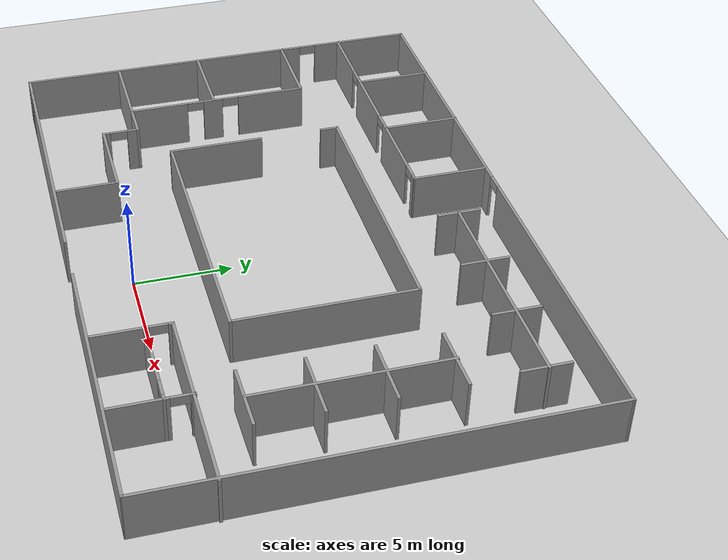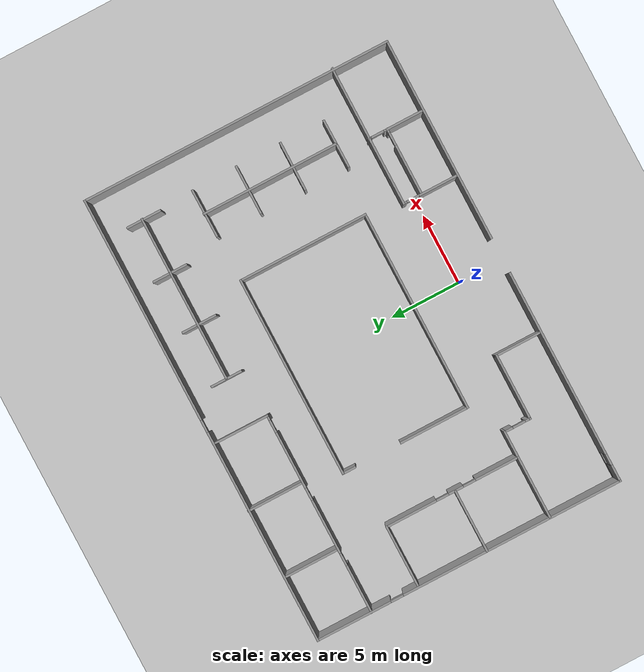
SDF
<sdf version="1.6">
 <world name="default">
  <light name="sun" type="directional">
   <pose>0 0 10 0 -0 0</pose>
   <diffuse>0.8 0.8 0.8 1</diffuse>
   <specular>0.2 0.2 0.2 1</specular>
   <attenuation>
    <range>1000</range>
    <constant>0.9</constant>
    <linear>0.01</linear>
    <quadratic>0.001</quadratic>
   </attenuation>
   <direction>-0.5 0.1 -0.9</direction>
  </light>
  <model name="ground_plane">
   <static>1</static>
   <link name="link">
    <collision name="collision">
     <geometry><plane><normal>0 0 1</normal><size>100 100</size></plane></geometry>
     <surface><friction><ode><mu>100</mu><mu2>50</mu2></ode></friction></surface>
    </collision>
    <visual name="visual">
     <cast_shadows>0</cast_shadows>
     <geometry><plane><normal>0 0 1</normal><size>100 100</size></plane></geometry>
     <material>
      <script><uri>file://media/materials/scripts/gazebo.material</uri><name>Gazebo/Grey</name></script>
     </material>
    </visual>
   </link>
  </model>
  <gravity>0 0 -9.8</gravity>
  <magnetic_field>6e-06 2.3e-05 -4.2e-05</magnetic_field>
  <atmosphere type="adiabatic"/>
  <physics name="default_physics" default="0" type="ode">
   <max_step_size>0.001</max_step_size>
   <real_time_factor>1</real_time_factor>
   <real_time_update_rate>1000</real_time_update_rate>
  </physics>
  <scene><ambient>0.4 0.4 0.4 1</ambient><background>0.7 0.7 0.7 1</background><shadows>1</shadows></scene>
  <spherical_coordinates>
   <surface_model>EARTH_WGS84</surface_model>
   <latitude_deg>0</latitude_deg>
   <longitude_deg>0</longitude_deg>
   <elevation>0</elevation>
   <heading_deg>0</heading_deg>
  </spherical_coordinates>
  <model name="Untitled12">
   <pose>-0.0795 8.01039 0 0 -0 0</pose>
   <link name="Wall_101">
    <collision name="Wall_101_Collision">
     <geometry><box><size>4.5 0.15 2.5</size></box></geometry>
     <pose>0 0 1.25 0 -0 0</pose>
    </collision>
    <visual name="Wall_101_Visual">
     <pose>0 0 1.25 0 -0 0</pose>
     <geometry><box><size>4.5 0.15 2.5</size></box></geometry>
     <material>
      <script><uri>file://media/materials/scripts/gazebo.material</uri><name>Gazebo/Grey</name></script>
      <ambient>1 1 1 1</ambient>
     </material>
     <meta><layer>0</layer></meta>
    </visual>
    <pose>-13.8522 -5.94015 0 0 -0 3.14159</pose>
   </link>
   <link name="Wall_103">
    <collision name="Wall_103_Collision">
     <geometry><box><size>4.5 0.15 2.5</size></box></geometry>
     <pose>0 0 1.25 0 -0 0</pose>
    </collision>
    <visual name="Wall_103_Visual">
     <pose>0 0 1.25 0 -0 0</pose>
     <geometry><box><size>4.5 0.15 2.5</size></box></geometry>
     <material>
      <script><uri>file://media/materials/scripts/gazebo.material</uri><name>Gazebo/Grey</name></script>
      <ambient>1 1 1 1</ambient>
     </material>
     <meta><layer>0</layer></meta>
    </visual>
    <pose>-13.8999 -1.33636 0 0 -0 3.14159</pose>
   </link>
   <link name="Wall_35">
    <pose>-0.004782 11.0154 0 0 -0 0</pose>
    <visual name="Wall_35_Visual_0">
     <pose>-8.49214 0 1.25 0 -0 0</pose>
     <geometry><box><size>15.2657 0.15 2.5</size></box></geometry>
     <material>
      <script><uri>file://media/materials/scripts/gazebo.material</uri><name>Gazebo/Grey</name></script>
      <ambient>1 1 1 1</ambient>
     </material>
     <meta><layer>0</layer></meta>
    </visual>
    <collision name="Wall_35_Collision_0">
     <geometry><box><size>15.2657 0.15 2.5</size></box></geometry>
     <pose>-8.49214 0 1.25 0 -0 0</pose>
    </collision>
    <visual name="Wall_35_Visual_1">
     <pose>8.08286 0 1.25 0 -0 0</pose>
     <geometry><box><size>16.0843 0.15 2.5</size></box></geometry>
     <material>
      <script><uri>file://media/materials/scripts/gazebo.material</uri><name>Gazebo/Grey</name></script>
      <ambient>1 1 1 1</ambient>
     </material>
     <meta><layer>0</layer></meta>
    </visual>
    <collision name="Wall_35_Collision_1">
     <geometry><box><size>16.0843 0.15 2.5</size></box></geometry>
     <pose>8.08286 0 1.25 0 -0 0</pose>
    </collision>
    <visual name="Wall_35_Visual_2">
     <pose>-0.409273 0 2.25 0 -0 0</pose>
     <geometry><box><size>0.9 0.15 0.5</size></box></geometry>
     <material>
      <script><uri>file://media/materials/scripts/gazebo.material</uri><name>Gazebo/Grey</name></script>
      <ambient>1 1 1 1</ambient>
     </material>
     <meta><layer>0</layer></meta>
    </visual>
    <collision name="Wall_35_Collision_2">
     <geometry><box><size>0.9 0.15 0.5</size></box></geometry>
     <pose>-0.409273 0 2.25 0 -0 0</pose>
    </collision>
   </link>
   <link name="Wall_36">
    <collision name="Wall_36_Collision">
     <geometry><box><size>22.2038 0.15 2.5</size></box></geometry>
     <pose>0 0 1.25 0 -0 0</pose>
    </collision>
    <visual name="Wall_36_Visual">
     <pose>0 0 1.25 0 -0 0</pose>
     <geometry><box><size>22.2038 0.15 2.5</size></box></geometry>
     <material>
      <script><uri>file://media/materials/scripts/gazebo.material</uri><name>Gazebo/Grey</name></script>
      <ambient>1 1 1 1</ambient>
     </material>
     <meta><layer>0</layer></meta>
    </visual>
    <pose>16.0221 -0.011487 0 0 0 -1.57289</pose>
   </link>
   <link name="Wall_38">
    <pose>-16.0779 -0.011487 0 0 -0 1.5687</pose>
    <visual name="Wall_38_Visual_0">
     <pose>-3.15406 0 1.25 0 -0 0</pose>
     <geometry><box><size>15.8957 0.15 2.5</size></box></geometry>
     <material>
      <script><uri>file://media/materials/scripts/gazebo.material</uri><name>Gazebo/Grey</name></script>
      <ambient>1 1 1 1</ambient>
     </material>
     <meta><layer>0</layer></meta>
    </visual>
    <collision name="Wall_38_Collision_0">
     <geometry><box><size>15.8957 0.15 2.5</size></box></geometry>
     <pose>-3.15406 0 1.25 0 -0 0</pose>
    </collision>
    <visual name="Wall_38_Visual_1">
     <pose>8.39784 0 1.25 0 -0 0</pose>
     <geometry><box><size>5.40811 0.15 2.5</size></box></geometry>
     <material>
      <script><uri>file://media/materials/scripts/gazebo.material</uri><name>Gazebo/Grey</name></script>
      <ambient>1 1 1 1</ambient>
     </material>
     <meta><layer>0</layer></meta>
    </visual>
    <collision name="Wall_38_Collision_1">
     <geometry><box><size>5.40811 0.15 2.5</size></box></geometry>
     <pose>8.39784 0 1.25 0 -0 0</pose>
    </collision>
    <visual name="Wall_38_Visual_2">
     <pose>5.24378 0 2.25 0 -0 0</pose>
     <geometry><box><size>0.9 0.15 0.5</size></box></geometry>
     <material>
      <script><uri>file://media/materials/scripts/gazebo.material</uri><name>Gazebo/Grey</name></script>
      <ambient>1 1 1 1</ambient>
     </material>
     <meta><layer>0</layer></meta>
    </visual>
    <collision name="Wall_38_Collision_2">
     <geometry><box><size>0.9 0.15 0.5</size></box></geometry>
     <pose>5.24378 0 2.25 0 -0 0</pose>
    </collision>
   </link>
   <link name="Wall_40">
    <pose>-8.89847 7.10631 0 0 -0 0</pose>
    <visual name="Wall_40_Visual_0">
     <pose>-5.5061 0 1.25 0 -0 0</pose>
     <geometry><box><size>3.48781 0.15 2.5</size></box></geometry>
     <material>
      <script><uri>file://media/materials/scripts/gazebo.material</uri><name>Gazebo/Grey</name></script>
      <ambient>1 1 1 1</ambient>
     </material>
     <meta><layer>0</layer></meta>
    </visual>
    <collision name="Wall_40_Collision_0">
     <geometry><box><size>3.48781 0.15 2.5</size></box></geometry>
     <pose>-5.5061 0 1.25 0 -0 0</pose>
    </collision>
    <visual name="Wall_40_Visual_1">
     <pose>-0.929736 0 1.25 0 -0 0</pose>
     <geometry><box><size>3.8649 0.15 2.5</size></box></geometry>
     <material>
      <script><uri>file://media/materials/scripts/gazebo.material</uri><name>Gazebo/Grey</name></script>
      <ambient>1 1 1 1</ambient>
     </material>
     <meta><layer>0</layer></meta>
    </visual>
    <collision name="Wall_40_Collision_1">
     <geometry><box><size>3.8649 0.15 2.5</size></box></geometry>
     <pose>-0.929736 0 1.25 0 -0 0</pose>
    </collision>
    <visual name="Wall_40_Visual_2">
     <pose>3.92769 0 1.25 0 -0 0</pose>
     <geometry><box><size>4.04995 0.15 2.5</size></box></geometry>
     <material>
      <script><uri>file://media/materials/scripts/gazebo.material</uri><name>Gazebo/Grey</name></script>
      <ambient>1 1 1 1</ambient>
     </material>
     <meta><layer>0</layer></meta>
    </visual>
    <collision name="Wall_40_Collision_2">
     <geometry><box><size>4.04995 0.15 2.5</size></box></geometry>
     <pose>3.92769 0 1.25 0 -0 0</pose>
    </collision>
    <visual name="Wall_40_Visual_3">
     <pose>7.05133 0 1.25 0 -0 0</pose>
     <geometry><box><size>0.397334 0.15 2.5</size></box></geometry>
     <material>
      <script><uri>file://media/materials/scripts/gazebo.material</uri><name>Gazebo/Grey</name></script>
      <ambient>1 1 1 1</ambient>
     </material>
     <meta><layer>0</layer></meta>
    </visual>
    <collision name="Wall_40_Collision_3">
     <geometry><box><size>0.397334 0.15 2.5</size></box></geometry>
     <pose>7.05133 0 1.25 0 -0 0</pose>
    </collision>
    <visual name="Wall_40_Visual_4">
     <pose>-3.31219 0 2.25 0 -0 0</pose>
     <geometry><box><size>0.9 0.15 0.5</size></box></geometry>
     <material>
      <script><uri>file://media/materials/scripts/gazebo.material</uri><name>Gazebo/Grey</name></script>
      <ambient>1 1 1 1</ambient>
     </material>
     <meta><layer>0</layer></meta>
    </visual>
    <collision name="Wall_40_Collision_4">
     <geometry><box><size>0.9 0.15 0.5</size></box></geometry>
     <pose>-3.31219 0 2.25 0 -0 0</pose>
    </collision>
    <visual name="Wall_40_Visual_5">
     <pose>1.45272 0 2.25 0 -0 0</pose>
     <geometry><box><size>0.9 0.15 0.5</size></box></geometry>
     <material>
      <script><uri>file://media/materials/scripts/gazebo.material</uri><name>Gazebo/Grey</name></script>
      <ambient>1 1 1 1</ambient>
     </material>
     <meta><layer>0</layer></meta>
    </visual>
    <collision name="Wall_40_Collision_5">
     <geometry><box><size>0.9 0.15 0.5</size></box></geometry>
     <pose>1.45272 0 2.25 0 -0 0</pose>
    </collision>
    <visual name="Wall_40_Visual_6">
     <pose>6.40267 0 2.25 0 -0 0</pose>
     <geometry><box><size>0.9 0.15 0.5</size></box></geometry>
     <material>
      <script><uri>file://media/materials/scripts/gazebo.material</uri><name>Gazebo/Grey</name></script>
      <ambient>1 1 1 1</ambient>
     </material>
     <meta><layer>0</layer></meta>
    </visual>
    <collision name="Wall_40_Collision_6">
     <geometry><box><size>0.9 0.15 0.5</size></box></geometry>
     <pose>6.40267 0 2.25 0 -0 0</pose>
    </collision>
   </link>
   <link name="Wall_43">
    <collision name="Wall_43_Collision">
     <geometry><box><size>4.03597 0.15 2.5</size></box></geometry>
     <pose>0 0 1.25 0 -0 0</pose>
    </collision>
    <visual name="Wall_43_Visual">
     <pose>0 0 1.25 0 -0 0</pose>
     <geometry><box><size>4.03597 0.15 2.5</size></box></geometry>
     <material>
      <script><uri>file://media/materials/scripts/gazebo.material</uri><name>Gazebo/Grey</name></script>
      <ambient>1 1 1 1</ambient>
     </material>
     <meta><layer>0</layer></meta>
    </visual>
    <pose>-1.71642 9.04928 0 0 0 -1.57443</pose>
   </link>
   <link name="Wall_45">
    <collision name="Wall_45_Collision">
     <geometry><box><size>4 0.15 2.5</size></box></geometry>
     <pose>0 0 1.25 0 -0 0</pose>
    </collision>
    <visual name="Wall_45_Visual">
     <pose>0 0 1.25 0 -0 0</pose>
     <geometry><box><size>4 0.15 2.5</size></box></geometry>
     <material>
      <script><uri>file://media/materials/scripts/gazebo.material</uri><name>Gazebo/Grey</name></script>
      <ambient>1 1 1 1</ambient>
     </material>
     <meta><layer>0</layer></meta>
    </visual>
    <pose>-6.58993 9.11351 0 0 0 -1.5708</pose>
   </link>
   <link name="Wall_47">
    <collision name="Wall_47_Collision">
     <geometry><box><size>4 0.15 2.5</size></box></geometry>
     <pose>0 0 1.25 0 -0 0</pose>
    </collision>
    <visual name="Wall_47_Visual">
     <pose>0 0 1.25 0 -0 0</pose>
     <geometry><box><size>4 0.15 2.5</size></box></geometry>
     <material>
      <script><uri>file://media/materials/scripts/gazebo.material</uri><name>Gazebo/Grey</name></script>
      <ambient>1 1 1 1</ambient>
     </material>
     <meta><layer>0</layer></meta>
    </visual>
    <pose>-11.4705 9.06725 0 0 0 -1.5708</pose>
   </link>
   <link name="Wall_49">
    <collision name="Wall_49_Collision">
     <geometry><box><size>11.75 0.15 2.5</size></box></geometry>
     <pose>0 0 1.25 0 -0 0</pose>
    </collision>
    <visual name="Wall_49_Visual">
     <pose>0 0 1.25 0 -0 0</pose>
     <geometry><box><size>11.75 0.15 2.5</size></box></geometry>
     <material>
      <script><uri>file://media/materials/scripts/gazebo.material</uri><name>Gazebo/Grey</name></script>
      <ambient>1 1 1 1</ambient>
     </material>
     <meta><layer>0</layer></meta>
    </visual>
    <pose>7.4677 8.3091 0 0 -0 0</pose>
   </link>
   <link name="Wall_53">
    <collision name="Wall_53_Collision">
     <geometry><box><size>2.25 0.15 2.5</size></box></geometry>
     <pose>0 0 1.25 0 -0 0</pose>
    </collision>
    <visual name="Wall_53_Visual">
     <pose>0 0 1.25 0 -0 0</pose>
     <geometry><box><size>2.25 0.15 2.5</size></box></geometry>
     <material>
      <script><uri>file://media/materials/scripts/gazebo.material</uri><name>Gazebo/Grey</name></script>
      <ambient>1 1 1 1</ambient>
     </material>
     <meta><layer>0</layer></meta>
    </visual>
    <pose>1.62144 8.32311 0 0 -0 1.5708</pose>
   </link>
   <link name="Wall_55">
    <collision name="Wall_55_Collision">
     <geometry><box><size>2.5 0.15 2.5</size></box></geometry>
     <pose>0 0 1.25 0 -0 0</pose>
    </collision>
    <visual name="Wall_55_Visual">
     <pose>0 0 1.25 0 -0 0</pose>
     <geometry><box><size>2.5 0.15 2.5</size></box></geometry>
     <material>
      <script><uri>file://media/materials/scripts/gazebo.material</uri><name>Gazebo/Grey</name></script>
      <ambient>1 1 1 1</ambient>
     </material>
     <meta><layer>0</layer></meta>
    </visual>
    <pose>5.57677 8.21635 0 0 -0 1.5708</pose>
   </link>
   <link name="Wall_58">
    <collision name="Wall_58_Collision">
     <geometry><box><size>2.5 0.15 2.5</size></box></geometry>
     <pose>0 0 1.25 0 -0 0</pose>
    </collision>
    <visual name="Wall_58_Visual">
     <pose>0 0 1.25 0 -0 0</pose>
     <geometry><box><size>2.5 0.15 2.5</size></box></geometry>
     <material>
      <script><uri>file://media/materials/scripts/gazebo.material</uri><name>Gazebo/Grey</name></script>
      <ambient>1 1 1 1</ambient>
     </material>
     <meta><layer>0</layer></meta>
    </visual>
    <pose>9.34706 8.3507 0 0 -0 1.5708</pose>
   </link>
   <link name="Wall_60">
    <collision name="Wall_60_Collision">
     <geometry><box><size>2.5 0.15 2.5</size></box></geometry>
     <pose>0 0 1.25 0 -0 0</pose>
    </collision>
    <visual name="Wall_60_Visual">
     <pose>0 0 1.25 0 -0 0</pose>
     <geometry><box><size>2.5 0.15 2.5</size></box></geometry>
     <material>
      <script><uri>file://media/materials/scripts/gazebo.material</uri><name>Gazebo/Grey</name></script>
      <ambient>1 1 1 1</ambient>
     </material>
     <meta><layer>0</layer></meta>
    </visual>
    <pose>13.2214 8.19811 0 0 0 -1.5708</pose>
   </link>
   <link name="Wall_66">
    <collision name="Wall_66_Collision">
     <geometry><box><size>9.75 0.15 2.5</size></box></geometry>
     <pose>0 0 1.25 0 -0 0</pose>
    </collision>
    <visual name="Wall_66_Visual">
     <pose>0 0 1.25 0 -0 0</pose>
     <geometry><box><size>9.75 0.15 2.5</size></box></geometry>
     <material>
      <script><uri>file://media/materials/scripts/gazebo.material</uri><name>Gazebo/Grey</name></script>
      <ambient>1 1 1 1</ambient>
     </material>
     <meta><layer>0</layer></meta>
    </visual>
    <pose>11.7064 -0.191796 0 0 0 -1.5708</pose>
   </link>
   <link name="Wall_68">
    <collision name="Wall_68_Collision">
     <geometry><box><size>3.45776 0.15 2.5</size></box></geometry>
     <pose>0 0 1.25 0 -0 0</pose>
    </collision>
    <visual name="Wall_68_Visual">
     <pose>0 0 1.25 0 -0 0</pose>
     <geometry><box><size>3.45776 0.15 2.5</size></box></geometry>
     <material>
      <script><uri>file://media/materials/scripts/gazebo.material</uri><name>Gazebo/Grey</name></script>
      <ambient>1 1 1 1</ambient>
     </material>
     <meta><layer>0</layer></meta>
    </visual>
    <pose>11.7179 4.55038 0 0 -0 0.006993</pose>
   </link>
   <link name="Wall_70">
    <collision name="Wall_70_Collision">
     <geometry><box><size>3.5 0.15 2.5</size></box></geometry>
     <pose>0 0 1.25 0 -0 0</pose>
    </collision>
    <visual name="Wall_70_Visual">
     <pose>0 0 1.25 0 -0 0</pose>
     <geometry><box><size>3.5 0.15 2.5</size></box></geometry>
     <material>
      <script><uri>file://media/materials/scripts/gazebo.material</uri><name>Gazebo/Grey</name></script>
      <ambient>1 1 1 1</ambient>
     </material>
     <meta><layer>0</layer></meta>
    </visual>
    <pose>11.7391 1.34679 0 0 -0 0</pose>
   </link>
   <link name="Wall_72">
    <collision name="Wall_72_Collision">
     <geometry><box><size>3.5 0.15 2.5</size></box></geometry>
     <pose>0 0 1.25 0 -0 0</pose>
    </collision>
    <visual name="Wall_72_Visual">
     <pose>0 0 1.25 0 -0 0</pose>
     <geometry><box><size>3.5 0.15 2.5</size></box></geometry>
     <material>
      <script><uri>file://media/materials/scripts/gazebo.material</uri><name>Gazebo/Grey</name></script>
      <ambient>1 1 1 1</ambient>
     </material>
     <meta><layer>0</layer></meta>
    </visual>
    <pose>11.7391 -1.8915 0 0 -0 0</pose>
   </link>
   <link name="Wall_74">
    <collision name="Wall_74_Collision">
     <geometry><box><size>3.45776 0.15 2.5</size></box></geometry>
     <pose>0 0 1.25 0 -0 0</pose>
    </collision>
    <visual name="Wall_74_Visual">
     <pose>0 0 1.25 0 -0 0</pose>
     <geometry><box><size>3.45776 0.15 2.5</size></box></geometry>
     <material>
      <script><uri>file://media/materials/scripts/gazebo.material</uri><name>Gazebo/Grey</name></script>
      <ambient>1 1 1 1</ambient>
     </material>
     <meta><layer>0</layer></meta>
    </visual>
    <pose>11.7179 -5.04962 0 0 -0 0.006993</pose>
   </link>
   <link name="Wall_76">
    <collision name="Wall_76_Collision">
     <geometry><box><size>4.5 0.15 2.5</size></box></geometry>
     <pose>0 0 1.25 0 -0 0</pose>
    </collision>
    <visual name="Wall_76_Visual">
     <pose>0 0 1.25 0 -0 0</pose>
     <geometry><box><size>4.5 0.15 2.5</size></box></geometry>
     <material>
      <script><uri>file://media/materials/scripts/gazebo.material</uri><name>Gazebo/Grey</name></script>
      <ambient>1 1 1 1</ambient>
     </material>
     <meta><layer>0</layer></meta>
    </visual>
    <pose>-13.8522 3.65985 0 0 -0 0</pose>
   </link>
   <link name="Wall_77">
    <pose>-11.6772 -1.14015 0 0 0 -1.5708</pose>
    <visual name="Wall_77_Visual_0">
     <pose>-3.02701 0 1.25 0 -0 0</pose>
     <geometry><box><size>3.69599 0.15 2.5</size></box></geometry>
     <material>
      <script><uri>file://media/materials/scripts/gazebo.material</uri><name>Gazebo/Grey</name></script>
      <ambient>1 1 1 1</ambient>
     </material>
     <meta><layer>0</layer></meta>
    </visual>
    <collision name="Wall_77_Collision_0">
     <geometry><box><size>3.69599 0.15 2.5</size></box></geometry>
     <pose>-3.02701 0 1.25 0 -0 0</pose>
    </collision>
    <visual name="Wall_77_Visual_1">
     <pose>0.254038 0 1.25 0 -0 0</pose>
     <geometry><box><size>1.0661 0.15 2.5</size></box></geometry>
     <material>
      <script><uri>file://media/materials/scripts/gazebo.material</uri><name>Gazebo/Grey</name></script>
      <ambient>1 1 1 1</ambient>
     </material>
     <meta><layer>0</layer></meta>
    </visual>
    <collision name="Wall_77_Collision_1">
     <geometry><box><size>1.0661 0.15 2.5</size></box></geometry>
     <pose>0.254038 0 1.25 0 -0 0</pose>
    </collision>
    <visual name="Wall_77_Visual_2">
     <pose>3.28104 0 1.25 0 -0 0</pose>
     <geometry><box><size>3.18791 0.15 2.5</size></box></geometry>
     <material>
      <script><uri>file://media/materials/scripts/gazebo.material</uri><name>Gazebo/Grey</name></script>
      <ambient>1 1 1 1</ambient>
     </material>
     <meta><layer>0</layer></meta>
    </visual>
    <collision name="Wall_77_Collision_2">
     <geometry><box><size>3.18791 0.15 2.5</size></box></geometry>
     <pose>3.28104 0 1.25 0 -0 0</pose>
    </collision>
    <visual name="Wall_77_Visual_3">
     <pose>-0.729013 0 2.25 0 -0 0</pose>
     <geometry><box><size>0.9 0.15 0.5</size></box></geometry>
     <material>
      <script><uri>file://media/materials/scripts/gazebo.material</uri><name>Gazebo/Grey</name></script>
      <ambient>1 1 1 1</ambient>
     </material>
     <meta><layer>0</layer></meta>
    </visual>
    <collision name="Wall_77_Collision_3">
     <geometry><box><size>0.9 0.15 0.5</size></box></geometry>
     <pose>-0.729013 0 2.25 0 -0 0</pose>
    </collision>
    <visual name="Wall_77_Visual_4">
     <pose>1.23709 0 2.25 0 -0 0</pose>
     <geometry><box><size>0.9 0.15 0.5</size></box></geometry>
     <material>
      <script><uri>file://media/materials/scripts/gazebo.material</uri><name>Gazebo/Grey</name></script>
      <ambient>1 1 1 1</ambient>
     </material>
     <meta><layer>0</layer></meta>
    </visual>
    <collision name="Wall_77_Collision_4">
     <geometry><box><size>0.9 0.15 0.5</size></box></geometry>
     <pose>1.23709 0 2.25 0 -0 0</pose>
    </collision>
   </link>
   <link name="Wall_78">
    <collision name="Wall_78_Collision">
     <geometry><box><size>2 0.15 2.5</size></box></geometry>
     <pose>0 0 1.25 0 -0 0</pose>
    </collision>
    <visual name="Wall_78_Visual">
     <pose>0 0 1.25 0 -0 0</pose>
     <geometry><box><size>2 0.15 2.5</size></box></geometry>
     <material>
      <script><uri>file://media/materials/scripts/gazebo.material</uri><name>Gazebo/Grey</name></script>
      <ambient>1 1 1 1</ambient>
     </material>
     <meta><layer>0</layer></meta>
    </visual>
    <pose>-10.7522 -5.94015 0 0 -0 0</pose>
   </link>
   <link name="Wall_79">
    <pose>-9.82722 -6.86515 0 0 0 -1.5708</pose>
    <visual name="Wall_79_Visual_0">
     <pose>-0.66746 0 1.25 0 -0 0</pose>
     <geometry><box><size>0.66508 0.15 2.5</size></box></geometry>
     <material>
      <script><uri>file://media/materials/scripts/gazebo.material</uri><name>Gazebo/Grey</name></script>
      <ambient>1 1 1 1</ambient>
     </material>
     <meta><layer>0</layer></meta>
    </visual>
    <collision name="Wall_79_Collision_0">
     <geometry><box><size>0.66508 0.15 2.5</size></box></geometry>
     <pose>-0.66746 0 1.25 0 -0 0</pose>
    </collision>
    <visual name="Wall_79_Visual_1">
     <pose>0.78254 0 1.25 0 -0 0</pose>
     <geometry><box><size>0.43492 0.15 2.5</size></box></geometry>
     <material>
      <script><uri>file://media/materials/scripts/gazebo.material</uri><name>Gazebo/Grey</name></script>
      <ambient>1 1 1 1</ambient>
     </material>
     <meta><layer>0</layer></meta>
    </visual>
    <collision name="Wall_79_Collision_1">
     <geometry><box><size>0.43492 0.15 2.5</size></box></geometry>
     <pose>0.78254 0 1.25 0 -0 0</pose>
    </collision>
    <visual name="Wall_79_Visual_2">
     <pose>0.11508 0 2.25 0 -0 0</pose>
     <geometry><box><size>0.9 0.15 0.5</size></box></geometry>
     <material>
      <script><uri>file://media/materials/scripts/gazebo.material</uri><name>Gazebo/Grey</name></script>
      <ambient>1 1 1 1</ambient>
     </material>
     <meta><layer>0</layer></meta>
    </visual>
    <collision name="Wall_79_Collision_2">
     <geometry><box><size>0.9 0.15 0.5</size></box></geometry>
     <pose>0.11508 0 2.25 0 -0 0</pose>
    </collision>
   </link>
   <link name="Wall_80">
    <collision name="Wall_80_Collision">
     <geometry><box><size>4.75 0.15 2.5</size></box></geometry>
     <pose>0 0 1.25 0 -0 0</pose>
    </collision>
    <visual name="Wall_80_Visual">
     <pose>0 0 1.25 0 -0 0</pose>
     <geometry><box><size>4.75 0.15 2.5</size></box></geometry>
     <material>
      <script><uri>file://media/materials/scripts/gazebo.material</uri><name>Gazebo/Grey</name></script>
      <ambient>1 1 1 1</ambient>
     </material>
     <meta><layer>0</layer></meta>
    </visual>
    <pose>-7.52721 -7.79015 0 0 -0 0</pose>
   </link>
   <link name="Wall_81">
    <collision name="Wall_81_Collision">
     <geometry><box><size>3.25 0.15 2.5</size></box></geometry>
     <pose>0 0 1.25 0 -0 0</pose>
    </collision>
    <visual name="Wall_81_Visual">
     <pose>0 0 1.25 0 -0 0</pose>
     <geometry><box><size>3.25 0.15 2.5</size></box></geometry>
     <material>
      <script><uri>file://media/materials/scripts/gazebo.material</uri><name>Gazebo/Grey</name></script>
      <ambient>1 1 1 1</ambient>
     </material>
     <meta><layer>0</layer></meta>
    </visual>
    <pose>-5.22721 -9.34015 0 0 0 -1.5708</pose>
   </link>
   <link name="Wall_83">
    <collision name="Wall_83_Collision">
     <geometry><box><size>14.5 0.15 2.5</size></box></geometry>
     <pose>0 0 1.25 0 -0 0</pose>
    </collision>
    <visual name="Wall_83_Visual">
     <pose>0 0 1.25 0 -0 0</pose>
     <geometry><box><size>14.5 0.15 2.5</size></box></geometry>
     <material>
      <script><uri>file://media/materials/scripts/gazebo.material</uri><name>Gazebo/Grey</name></script>
      <ambient>1 1 1 1</ambient>
     </material>
     <meta><layer>0</layer></meta>
    </visual>
    <pose>8.82396 -11.0384 0 0 -0 3.14159</pose>
   </link>
   <link name="Wall_85">
    <pose>-8.50104 -11.0384 0 0 -0 3.14159</pose>
    <visual name="Wall_85_Visual_0">
     <pose>-0.989594 0 1.25 0 -0 0</pose>
     <geometry><box><size>13.2708 0.15 2.5</size></box></geometry>
     <material>
      <script><uri>file://media/materials/scripts/gazebo.material</uri><name>Gazebo/Grey</name></script>
      <ambient>1 1 1 1</ambient>
     </material>
     <meta><layer>0</layer></meta>
    </visual>
    <collision name="Wall_85_Collision_0">
     <geometry><box><size>13.2708 0.15 2.5</size></box></geometry>
     <pose>-0.989594 0 1.25 0 -0 0</pose>
    </collision>
    <visual name="Wall_85_Visual_1">
     <pose>6.63541 0 0.25 0 -0 0</pose>
     <geometry><box><size>1.97919 0.15 0.5</size></box></geometry>
     <material>
      <script><uri>file://media/materials/scripts/gazebo.material</uri><name>Gazebo/Grey</name></script>
      <ambient>1 1 1 1</ambient>
     </material>
     <meta><layer>0</layer></meta>
    </visual>
    <collision name="Wall_85_Collision_1">
     <geometry><box><size>1.97919 0.15 0.5</size></box></geometry>
     <pose>6.63541 0 0.25 0 -0 0</pose>
    </collision>
    <visual name="Wall_85_Visual_2">
     <pose>7.03541 0 1.5 0 -0 0</pose>
     <geometry><box><size>1.17919 0.15 2</size></box></geometry>
     <material>
      <script><uri>file://media/materials/scripts/gazebo.material</uri><name>Gazebo/Grey</name></script>
      <ambient>1 1 1 1</ambient>
     </material>
     <meta><layer>0</layer></meta>
    </visual>
    <collision name="Wall_85_Collision_2">
     <geometry><box><size>1.17919 0.15 2</size></box></geometry>
     <pose>7.03541 0 1.5 0 -0 0</pose>
    </collision>
    <visual name="Wall_85_Visual_3">
     <pose>6.04581 0 1.9 0 -0 0</pose>
     <geometry><box><size>0.8 0.15 1.2</size></box></geometry>
     <material>
      <script><uri>file://media/materials/scripts/gazebo.material</uri><name>Gazebo/Grey</name></script>
      <ambient>1 1 1 1</ambient>
     </material>
     <meta><layer>0</layer></meta>
    </visual>
    <collision name="Wall_85_Collision_3">
     <geometry><box><size>0.8 0.15 1.2</size></box></geometry>
     <pose>6.04581 0 1.9 0 -0 0</pose>
    </collision>
   </link>
   <link name="Wall_87">
    <collision name="Wall_87_Collision">
     <geometry><box><size>1 0.15 2.5</size></box></geometry>
     <pose>0 0 1.25 0 -0 0</pose>
    </collision>
    <visual name="Wall_87_Visual">
     <pose>0 0 1.25 0 -0 0</pose>
     <geometry><box><size>1 0.15 2.5</size></box></geometry>
     <material>
      <script><uri>file://media/materials/scripts/gazebo.material</uri><name>Gazebo/Grey</name></script>
      <ambient>1 1 1 1</ambient>
     </material>
     <meta><layer>0</layer></meta>
    </visual>
    <pose>-7.30698 4.10798 0 0 -0 1.5708</pose>
   </link>
   <link name="Wall_88">
    <collision name="Wall_88_Collision">
     <geometry><box><size>14.25 0.15 2.5</size></box></geometry>
     <pose>0 0 1.25 0 -0 0</pose>
    </collision>
    <visual name="Wall_88_Visual">
     <pose>0 0 1.25 0 -0 0</pose>
     <geometry><box><size>14.25 0.15 2.5</size></box></geometry>
     <material>
      <script><uri>file://media/materials/scripts/gazebo.material</uri><name>Gazebo/Grey</name></script>
      <ambient>1 1 1 1</ambient>
     </material>
     <meta><layer>0</layer></meta>
    </visual>
    <pose>-0.256975 4.53298 0 0 -0 0</pose>
   </link>
   <link name="Wall_89">
    <collision name="Wall_89_Collision">
     <geometry><box><size>9.25 0.15 2.5</size></box></geometry>
     <pose>0 0 1.25 0 -0 0</pose>
    </collision>
    <visual name="Wall_89_Visual">
     <pose>0 0 1.25 0 -0 0</pose>
     <geometry><box><size>9.25 0.15 2.5</size></box></geometry>
     <material>
      <script><uri>file://media/materials/scripts/gazebo.material</uri><name>Gazebo/Grey</name></script>
      <ambient>1 1 1 1</ambient>
     </material>
     <meta><layer>0</layer></meta>
    </visual>
    <pose>6.79303 -0.01702 0 0 0 -1.5708</pose>
   </link>
   <link name="Wall_90">
    <collision name="Wall_90_Collision">
     <geometry><box><size>14.25 0.15 2.5</size></box></geometry>
     <pose>0 0 1.25 0 -0 0</pose>
    </collision>
    <visual name="Wall_90_Visual">
     <pose>0 0 1.25 0 -0 0</pose>
     <geometry><box><size>14.25 0.15 2.5</size></box></geometry>
     <material>
      <script><uri>file://media/materials/scripts/gazebo.material</uri><name>Gazebo/Grey</name></script>
      <ambient>1 1 1 1</ambient>
     </material>
     <meta><layer>0</layer></meta>
    </visual>
    <pose>-0.256975 -4.56702 0 0 -0 3.14159</pose>
   </link>
   <link name="Wall_91">
    <collision name="Wall_91_Collision">
     <geometry><box><size>5 0.15 2.5</size></box></geometry>
     <pose>0 0 1.25 0 -0 0</pose>
    </collision>
    <visual name="Wall_91_Visual">
     <pose>0 0 1.25 0 -0 0</pose>
     <geometry><box><size>5 0.15 2.5</size></box></geometry>
     <material>
      <script><uri>file://media/materials/scripts/gazebo.material</uri><name>Gazebo/Grey</name></script>
      <ambient>1 1 1 1</ambient>
     </material>
     <meta><layer>0</layer></meta>
    </visual>
    <pose>-7.30698 -2.14202 0 0 -0 1.5708</pose>
   </link>
   <link name="Wall_93">
    <collision name="Wall_93_Collision">
     <geometry><box><size>10 0.15 2.5</size></box></geometry>
     <pose>0 0 1.25 0 -0 0</pose>
    </collision>
    <visual name="Wall_93_Visual">
     <pose>0 0 1.25 0 -0 0</pose>
     <geometry><box><size>10 0.15 2.5</size></box></geometry>
     <material>
      <script><uri>file://media/materials/scripts/gazebo.material</uri><name>Gazebo/Grey</name></script>
      <ambient>1 1 1 1</ambient>
     </material>
     <meta><layer>0</layer></meta>
    </visual>
    <pose>11.1762 -7.09588 0 0 -0 3.14159</pose>
   </link>
   <link name="Wall_94">
    <pose>6.2512 -9.02088 0 0 0 -1.5708</pose>
    <visual name="Wall_94_Visual_0">
     <pose>-1.85211 0 1.25 0 -0 0</pose>
     <geometry><box><size>0.295787 0.15 2.5</size></box></geometry>
     <material>
      <script><uri>file://media/materials/scripts/gazebo.material</uri><name>Gazebo/Grey</name></script>
      <ambient>1 1 1 1</ambient>
     </material>
     <meta><layer>0</layer></meta>
    </visual>
    <collision name="Wall_94_Collision_0">
     <geometry><box><size>0.295787 0.15 2.5</size></box></geometry>
     <pose>-1.85211 0 1.25 0 -0 0</pose>
    </collision>
    <visual name="Wall_94_Visual_1">
     <pose>0.597894 0 1.25 0 -0 0</pose>
     <geometry><box><size>2.80421 0.15 2.5</size></box></geometry>
     <material>
      <script><uri>file://media/materials/scripts/gazebo.material</uri><name>Gazebo/Grey</name></script>
      <ambient>1 1 1 1</ambient>
     </material>
     <meta><layer>0</layer></meta>
    </visual>
    <collision name="Wall_94_Collision_1">
     <geometry><box><size>2.80421 0.15 2.5</size></box></geometry>
     <pose>0.597894 0 1.25 0 -0 0</pose>
    </collision>
    <visual name="Wall_94_Visual_2">
     <pose>-1.25421 0 2.25 0 -0 0</pose>
     <geometry><box><size>0.9 0.15 0.5</size></box></geometry>
     <material>
      <script><uri>file://media/materials/scripts/gazebo.material</uri><name>Gazebo/Grey</name></script>
      <ambient>1 1 1 1</ambient>
     </material>
     <meta><layer>0</layer></meta>
    </visual>
    <collision name="Wall_94_Collision_2">
     <geometry><box><size>0.9 0.15 0.5</size></box></geometry>
     <pose>-1.25421 0 2.25 0 -0 0</pose>
    </collision>
   </link>
   <link name="Wall_96">
    <pose>10.9893 -7.72462 0 0 0 -1.5708</pose>
    <visual name="Wall_96_Visual_0">
     <pose>-0.613672 0 1.25 0 -0 0</pose>
     <geometry><box><size>0.272657 0.15 2.5</size></box></geometry>
     <material>
      <script><uri>file://media/materials/scripts/gazebo.material</uri><name>Gazebo/Grey</name></script>
      <ambient>1 1 1 1</ambient>
     </material>
     <meta><layer>0</layer></meta>
    </visual>
    <collision name="Wall_96_Collision_0">
     <geometry><box><size>0.272657 0.15 2.5</size></box></geometry>
     <pose>-0.613672 0 1.25 0 -0 0</pose>
    </collision>
    <visual name="Wall_96_Visual_1">
     <pose>0.586328 0 1.25 0 -0 0</pose>
     <geometry><box><size>0.327343 0.15 2.5</size></box></geometry>
     <material>
      <script><uri>file://media/materials/scripts/gazebo.material</uri><name>Gazebo/Grey</name></script>
      <ambient>1 1 1 1</ambient>
     </material>
     <meta><layer>0</layer></meta>
    </visual>
    <collision name="Wall_96_Collision_1">
     <geometry><box><size>0.327343 0.15 2.5</size></box></geometry>
     <pose>0.586328 0 1.25 0 -0 0</pose>
    </collision>
    <visual name="Wall_96_Visual_2">
     <pose>-0.027343 0 2.25 0 -0 0</pose>
     <geometry><box><size>0.9 0.15 0.5</size></box></geometry>
     <material>
      <script><uri>file://media/materials/scripts/gazebo.material</uri><name>Gazebo/Grey</name></script>
      <ambient>1 1 1 1</ambient>
     </material>
     <meta><layer>0</layer></meta>
    </visual>
    <collision name="Wall_96_Collision_2">
     <geometry><box><size>0.9 0.15 0.5</size></box></geometry>
     <pose>-0.027343 0 2.25 0 -0 0</pose>
    </collision>
   </link>
   <link name="Wall_97">
    <pose>8.68933 -8.39962 0 0 -0 3.14159</pose>
    <visual name="Wall_97_Visual_0">
     <pose>-2.20398 0 1.25 0 -0 0</pose>
     <geometry><box><size>0.342048 0.15 2.5</size></box></geometry>
     <material>
      <script><uri>file://media/materials/scripts/gazebo.material</uri><name>Gazebo/Grey</name></script>
      <ambient>1 1 1 1</ambient>
     </material>
     <meta><layer>0</layer></meta>
    </visual>
    <collision name="Wall_97_Collision_0">
     <geometry><box><size>0.342048 0.15 2.5</size></box></geometry>
     <pose>-2.20398 0 1.25 0 -0 0</pose>
    </collision>
    <visual name="Wall_97_Visual_1">
     <pose>0.621024 0 1.25 0 -0 0</pose>
     <geometry><box><size>3.50795 0.15 2.5</size></box></geometry>
     <material>
      <script><uri>file://media/materials/scripts/gazebo.material</uri><name>Gazebo/Grey</name></script>
      <ambient>1 1 1 1</ambient>
     </material>
     <meta><layer>0</layer></meta>
    </visual>
    <collision name="Wall_97_Collision_1">
     <geometry><box><size>3.50795 0.15 2.5</size></box></geometry>
     <pose>0.621024 0 1.25 0 -0 0</pose>
    </collision>
    <visual name="Wall_97_Visual_2">
     <pose>-1.58295 0 2.25 0 -0 0</pose>
     <geometry><box><size>0.9 0.15 0.5</size></box></geometry>
     <material>
      <script><uri>file://media/materials/scripts/gazebo.material</uri><name>Gazebo/Grey</name></script>
      <ambient>1 1 1 1</ambient>
     </material>
     <meta><layer>0</layer></meta>
    </visual>
    <collision name="Wall_97_Collision_2">
     <geometry><box><size>0.9 0.15 0.5</size></box></geometry>
     <pose>-1.58295 0 2.25 0 -0 0</pose>
    </collision>
   </link>
   <link name="Wall_99">
    <collision name="Wall_99_Collision">
     <geometry><box><size>2.75 0.15 2.5</size></box></geometry>
     <pose>0 0 1.25 0 -0 0</pose>
    </collision>
    <visual name="Wall_99_Visual">
     <pose>0 0 1.25 0 -0 0</pose>
     <geometry><box><size>2.75 0.15 2.5</size></box></geometry>
     <material>
      <script><uri>file://media/materials/scripts/gazebo.material</uri><name>Gazebo/Grey</name></script>
      <ambient>1 1 1 1</ambient>
     </material>
     <meta><layer>0</layer></meta>
    </visual>
    <pose>10.9893 -9.69962 0 0 0 -1.5708</pose>
   </link>
   <static>1</static>
  </model>
 </world>
</sdf>
